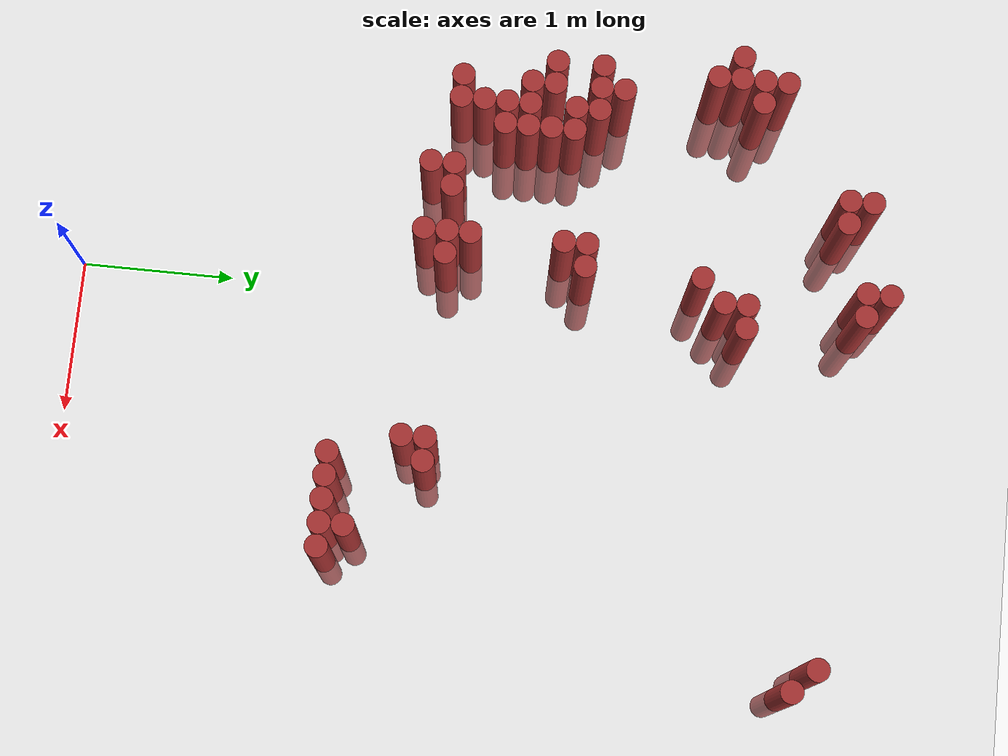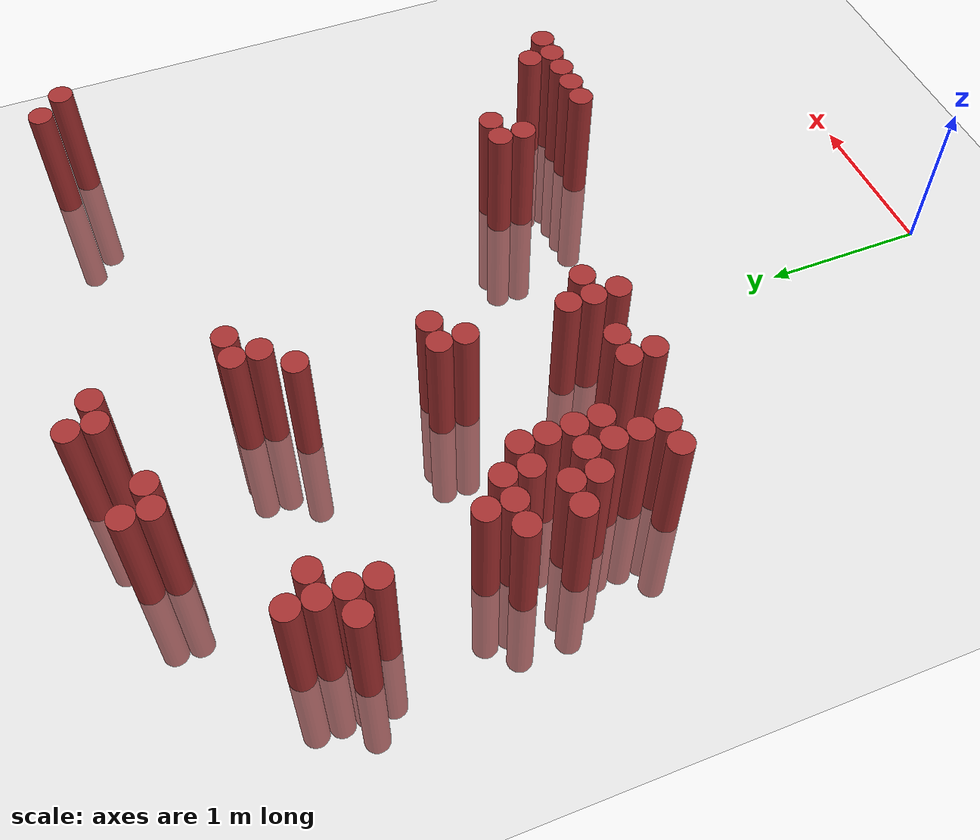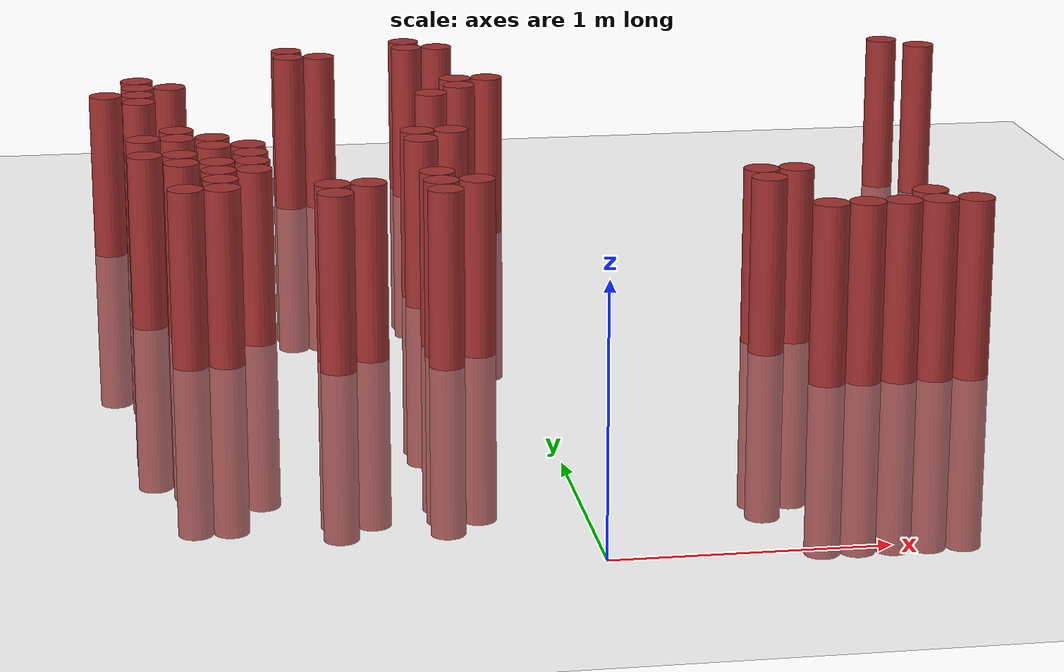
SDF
<sdf version="1.6">
 <world name="default">
  <model name="ground_plane">
   <static>1</static>
   <link name="link">
    <collision name="collision">
     <geometry><plane><normal>0 0 1</normal><size>100 100</size></plane></geometry>
     <surface><friction><ode><mu>100</mu><mu2>50</mu2></ode></friction></surface>
    </collision>
    <visual name="visual">
     <cast_shadows>0</cast_shadows>
     <geometry><plane><normal>0 0 1</normal><size>100 100</size></plane></geometry>
     <material>
      <script><uri>file://media/materials/scripts/gazebo.material</uri><name>Gazebo/Grey</name></script>
     </material>
    </visual>
   </link>
  </model>
  <model name="unit_cylinder_343">
   <static>1</static>
   <pose>-1.625000 4.225000 0.000000 0.000000 0.000000 0.000000</pose>
   <link name="link">
    <inertial>
     <mass>1</mass>
     <inertia><ixx>0.145833</ixx><ixy>0</ixy><ixz>0</ixz><iyy>0.145833</iyy><iyz>0</iyz><izz>0.125</izz></inertia>
    </inertial>
    <collision name="collision">
     <geometry><cylinder><radius>0.075000</radius><length>1.5</length></cylinder></geometry>
    </collision>
    <visual name="visual">
     <geometry><cylinder><radius>0.075000</radius><length>1.5</length></cylinder></geometry>
     <material>
      <ambient>0.648000 0.192000 0.192000 1</ambient>
      <diffuse>0.648000 0.192000 0.192000 1</diffuse>
     </material>
     <material>
      <script><name>Gazebo/Grey</name><uri>file://media/materials/scripts/gazebo.material</uri></script>
     </material>
    </visual>
   </link>
  </model>
  <model name="unit_cylinder_344">
   <static>1</static>
   <pose>-1.475000 3.025000 0.000000 0.000000 0.000000 0.000000</pose>
   <link name="link">
    <inertial>
     <mass>1</mass>
     <inertia><ixx>0.145833</ixx><ixy>0</ixy><ixz>0</ixz><iyy>0.145833</iyy><iyz>0</iyz><izz>0.125</izz></inertia>
    </inertial>
    <collision name="collision">
     <geometry><cylinder><radius>0.075000</radius><length>1.5</length></cylinder></geometry>
    </collision>
    <visual name="visual">
     <geometry><cylinder><radius>0.075000</radius><length>1.5</length></cylinder></geometry>
     <material>
      <ambient>0.648000 0.192000 0.192000 1</ambient>
      <diffuse>0.648000 0.192000 0.192000 1</diffuse>
     </material>
     <material>
      <script><name>Gazebo/Grey</name><uri>file://media/materials/scripts/gazebo.material</uri></script>
     </material>
    </visual>
   </link>
  </model>
  <model name="unit_cylinder_345">
   <static>1</static>
   <pose>-1.475000 3.325000 0.000000 0.000000 0.000000 0.000000</pose>
   <link name="link">
    <inertial>
     <mass>1</mass>
     <inertia><ixx>0.145833</ixx><ixy>0</ixy><ixz>0</ixz><iyy>0.145833</iyy><iyz>0</iyz><izz>0.125</izz></inertia>
    </inertial>
    <collision name="collision">
     <geometry><cylinder><radius>0.075000</radius><length>1.5</length></cylinder></geometry>
    </collision>
    <visual name="visual">
     <geometry><cylinder><radius>0.075000</radius><length>1.5</length></cylinder></geometry>
     <material>
      <ambient>0.648000 0.192000 0.192000 1</ambient>
      <diffuse>0.648000 0.192000 0.192000 1</diffuse>
     </material>
     <material>
      <script><name>Gazebo/Grey</name><uri>file://media/materials/scripts/gazebo.material</uri></script>
     </material>
    </visual>
   </link>
  </model>
  <model name="unit_cylinder_346">
   <static>1</static>
   <pose>-1.475000 4.075000 0.000000 0.000000 0.000000 0.000000</pose>
   <link name="link">
    <inertial>
     <mass>1</mass>
     <inertia><ixx>0.145833</ixx><ixy>0</ixy><ixz>0</ixz><iyy>0.145833</iyy><iyz>0</iyz><izz>0.125</izz></inertia>
    </inertial>
    <collision name="collision">
     <geometry><cylinder><radius>0.075000</radius><length>1.5</length></cylinder></geometry>
    </collision>
    <visual name="visual">
     <geometry><cylinder><radius>0.075000</radius><length>1.5</length></cylinder></geometry>
     <material>
      <ambient>0.648000 0.192000 0.192000 1</ambient>
      <diffuse>0.648000 0.192000 0.192000 1</diffuse>
     </material>
     <material>
      <script><name>Gazebo/Grey</name><uri>file://media/materials/scripts/gazebo.material</uri></script>
     </material>
    </visual>
   </link>
  </model>
  <model name="unit_cylinder_347">
   <static>1</static>
   <pose>-1.475000 4.225000 0.000000 0.000000 0.000000 0.000000</pose>
   <link name="link">
    <inertial>
     <mass>1</mass>
     <inertia><ixx>0.145833</ixx><ixy>0</ixy><ixz>0</ixz><iyy>0.145833</iyy><iyz>0</iyz><izz>0.125</izz></inertia>
    </inertial>
    <collision name="collision">
     <geometry><cylinder><radius>0.075000</radius><length>1.5</length></cylinder></geometry>
    </collision>
    <visual name="visual">
     <geometry><cylinder><radius>0.075000</radius><length>1.5</length></cylinder></geometry>
     <material>
      <ambient>0.648000 0.192000 0.192000 1</ambient>
      <diffuse>0.648000 0.192000 0.192000 1</diffuse>
     </material>
     <material>
      <script><name>Gazebo/Grey</name><uri>file://media/materials/scripts/gazebo.material</uri></script>
     </material>
    </visual>
   </link>
  </model>
  <model name="unit_cylinder_348">
   <static>1</static>
   <pose>-1.475000 4.375000 0.000000 0.000000 0.000000 0.000000</pose>
   <link name="link">
    <inertial>
     <mass>1</mass>
     <inertia><ixx>0.145833</ixx><ixy>0</ixy><ixz>0</ixz><iyy>0.145833</iyy><iyz>0</iyz><izz>0.125</izz></inertia>
    </inertial>
    <collision name="collision">
     <geometry><cylinder><radius>0.075000</radius><length>1.5</length></cylinder></geometry>
    </collision>
    <visual name="visual">
     <geometry><cylinder><radius>0.075000</radius><length>1.5</length></cylinder></geometry>
     <material>
      <ambient>0.648000 0.192000 0.192000 1</ambient>
      <diffuse>0.648000 0.192000 0.192000 1</diffuse>
     </material>
     <material>
      <script><name>Gazebo/Grey</name><uri>file://media/materials/scripts/gazebo.material</uri></script>
     </material>
    </visual>
   </link>
  </model>
  <model name="unit_cylinder_349">
   <static>1</static>
   <pose>-1.475000 4.525000 0.000000 0.000000 0.000000 0.000000</pose>
   <link name="link">
    <inertial>
     <mass>1</mass>
     <inertia><ixx>0.145833</ixx><ixy>0</ixy><ixz>0</ixz><iyy>0.145833</iyy><iyz>0</iyz><izz>0.125</izz></inertia>
    </inertial>
    <collision name="collision">
     <geometry><cylinder><radius>0.075000</radius><length>1.5</length></cylinder></geometry>
    </collision>
    <visual name="visual">
     <geometry><cylinder><radius>0.075000</radius><length>1.5</length></cylinder></geometry>
     <material>
      <ambient>0.648000 0.192000 0.192000 1</ambient>
      <diffuse>0.648000 0.192000 0.192000 1</diffuse>
     </material>
     <material>
      <script><name>Gazebo/Grey</name><uri>file://media/materials/scripts/gazebo.material</uri></script>
     </material>
    </visual>
   </link>
  </model>
  <model name="unit_cylinder_350">
   <static>1</static>
   <pose>-1.325000 2.425000 0.000000 0.000000 0.000000 0.000000</pose>
   <link name="link">
    <inertial>
     <mass>1</mass>
     <inertia><ixx>0.145833</ixx><ixy>0</ixy><ixz>0</ixz><iyy>0.145833</iyy><iyz>0</iyz><izz>0.125</izz></inertia>
    </inertial>
    <collision name="collision">
     <geometry><cylinder><radius>0.075000</radius><length>1.5</length></cylinder></geometry>
    </collision>
    <visual name="visual">
     <geometry><cylinder><radius>0.075000</radius><length>1.5</length></cylinder></geometry>
     <material>
      <ambient>0.648000 0.192000 0.192000 1</ambient>
      <diffuse>0.648000 0.192000 0.192000 1</diffuse>
     </material>
     <material>
      <script><name>Gazebo/Grey</name><uri>file://media/materials/scripts/gazebo.material</uri></script>
     </material>
    </visual>
   </link>
  </model>
  <model name="unit_cylinder_351">
   <static>1</static>
   <pose>-1.325000 2.875000 0.000000 0.000000 0.000000 0.000000</pose>
   <link name="link">
    <inertial>
     <mass>1</mass>
     <inertia><ixx>0.145833</ixx><ixy>0</ixy><ixz>0</ixz><iyy>0.145833</iyy><iyz>0</iyz><izz>0.125</izz></inertia>
    </inertial>
    <collision name="collision">
     <geometry><cylinder><radius>0.075000</radius><length>1.5</length></cylinder></geometry>
    </collision>
    <visual name="visual">
     <geometry><cylinder><radius>0.075000</radius><length>1.5</length></cylinder></geometry>
     <material>
      <ambient>0.648000 0.192000 0.192000 1</ambient>
      <diffuse>0.648000 0.192000 0.192000 1</diffuse>
     </material>
     <material>
      <script><name>Gazebo/Grey</name><uri>file://media/materials/scripts/gazebo.material</uri></script>
     </material>
    </visual>
   </link>
  </model>
  <model name="unit_cylinder_352">
   <static>1</static>
   <pose>-1.325000 3.025000 0.000000 0.000000 0.000000 0.000000</pose>
   <link name="link">
    <inertial>
     <mass>1</mass>
     <inertia><ixx>0.145833</ixx><ixy>0</ixy><ixz>0</ixz><iyy>0.145833</iyy><iyz>0</iyz><izz>0.125</izz></inertia>
    </inertial>
    <collision name="collision">
     <geometry><cylinder><radius>0.075000</radius><length>1.5</length></cylinder></geometry>
    </collision>
    <visual name="visual">
     <geometry><cylinder><radius>0.075000</radius><length>1.5</length></cylinder></geometry>
     <material>
      <ambient>0.648000 0.192000 0.192000 1</ambient>
      <diffuse>0.648000 0.192000 0.192000 1</diffuse>
     </material>
     <material>
      <script><name>Gazebo/Grey</name><uri>file://media/materials/scripts/gazebo.material</uri></script>
     </material>
    </visual>
   </link>
  </model>
  <model name="unit_cylinder_353">
   <static>1</static>
   <pose>-1.325000 3.325000 0.000000 0.000000 0.000000 0.000000</pose>
   <link name="link">
    <inertial>
     <mass>1</mass>
     <inertia><ixx>0.145833</ixx><ixy>0</ixy><ixz>0</ixz><iyy>0.145833</iyy><iyz>0</iyz><izz>0.125</izz></inertia>
    </inertial>
    <collision name="collision">
     <geometry><cylinder><radius>0.075000</radius><length>1.5</length></cylinder></geometry>
    </collision>
    <visual name="visual">
     <geometry><cylinder><radius>0.075000</radius><length>1.5</length></cylinder></geometry>
     <material>
      <ambient>0.648000 0.192000 0.192000 1</ambient>
      <diffuse>0.648000 0.192000 0.192000 1</diffuse>
     </material>
     <material>
      <script><name>Gazebo/Grey</name><uri>file://media/materials/scripts/gazebo.material</uri></script>
     </material>
    </visual>
   </link>
  </model>
  <model name="unit_cylinder_354">
   <static>1</static>
   <pose>-1.325000 3.475000 0.000000 0.000000 0.000000 0.000000</pose>
   <link name="link">
    <inertial>
     <mass>1</mass>
     <inertia><ixx>0.145833</ixx><ixy>0</ixy><ixz>0</ixz><iyy>0.145833</iyy><iyz>0</iyz><izz>0.125</izz></inertia>
    </inertial>
    <collision name="collision">
     <geometry><cylinder><radius>0.075000</radius><length>1.5</length></cylinder></geometry>
    </collision>
    <visual name="visual">
     <geometry><cylinder><radius>0.075000</radius><length>1.5</length></cylinder></geometry>
     <material>
      <ambient>0.648000 0.192000 0.192000 1</ambient>
      <diffuse>0.648000 0.192000 0.192000 1</diffuse>
     </material>
     <material>
      <script><name>Gazebo/Grey</name><uri>file://media/materials/scripts/gazebo.material</uri></script>
     </material>
    </visual>
   </link>
  </model>
  <model name="unit_cylinder_355">
   <static>1</static>
   <pose>-1.325000 4.375000 0.000000 0.000000 0.000000 0.000000</pose>
   <link name="link">
    <inertial>
     <mass>1</mass>
     <inertia><ixx>0.145833</ixx><ixy>0</ixy><ixz>0</ixz><iyy>0.145833</iyy><iyz>0</iyz><izz>0.125</izz></inertia>
    </inertial>
    <collision name="collision">
     <geometry><cylinder><radius>0.075000</radius><length>1.5</length></cylinder></geometry>
    </collision>
    <visual name="visual">
     <geometry><cylinder><radius>0.075000</radius><length>1.5</length></cylinder></geometry>
     <material>
      <ambient>0.648000 0.192000 0.192000 1</ambient>
      <diffuse>0.648000 0.192000 0.192000 1</diffuse>
     </material>
     <material>
      <script><name>Gazebo/Grey</name><uri>file://media/materials/scripts/gazebo.material</uri></script>
     </material>
    </visual>
   </link>
  </model>
  <model name="unit_cylinder_358">
   <static>1</static>
   <pose>-1.175000 2.425000 0.000000 0.000000 0.000000 0.000000</pose>
   <link name="link">
    <inertial>
     <mass>1</mass>
     <inertia><ixx>0.145833</ixx><ixy>0</ixy><ixz>0</ixz><iyy>0.145833</iyy><iyz>0</iyz><izz>0.125</izz></inertia>
    </inertial>
    <collision name="collision">
     <geometry><cylinder><radius>0.075000</radius><length>1.5</length></cylinder></geometry>
    </collision>
    <visual name="visual">
     <geometry><cylinder><radius>0.075000</radius><length>1.5</length></cylinder></geometry>
     <material>
      <ambient>0.648000 0.192000 0.192000 1</ambient>
      <diffuse>0.648000 0.192000 0.192000 1</diffuse>
     </material>
     <material>
      <script><name>Gazebo/Grey</name><uri>file://media/materials/scripts/gazebo.material</uri></script>
     </material>
    </visual>
   </link>
  </model>
  <model name="unit_cylinder_359">
   <static>1</static>
   <pose>-1.175000 2.575000 0.000000 0.000000 0.000000 0.000000</pose>
   <link name="link">
    <inertial>
     <mass>1</mass>
     <inertia><ixx>0.145833</ixx><ixy>0</ixy><ixz>0</ixz><iyy>0.145833</iyy><iyz>0</iyz><izz>0.125</izz></inertia>
    </inertial>
    <collision name="collision">
     <geometry><cylinder><radius>0.075000</radius><length>1.5</length></cylinder></geometry>
    </collision>
    <visual name="visual">
     <geometry><cylinder><radius>0.075000</radius><length>1.5</length></cylinder></geometry>
     <material>
      <ambient>0.648000 0.192000 0.192000 1</ambient>
      <diffuse>0.648000 0.192000 0.192000 1</diffuse>
     </material>
     <material>
      <script><name>Gazebo/Grey</name><uri>file://media/materials/scripts/gazebo.material</uri></script>
     </material>
    </visual>
   </link>
  </model>
  <model name="unit_cylinder_360">
   <static>1</static>
   <pose>-1.175000 2.725000 0.000000 0.000000 0.000000 0.000000</pose>
   <link name="link">
    <inertial>
     <mass>1</mass>
     <inertia><ixx>0.145833</ixx><ixy>0</ixy><ixz>0</ixz><iyy>0.145833</iyy><iyz>0</iyz><izz>0.125</izz></inertia>
    </inertial>
    <collision name="collision">
     <geometry><cylinder><radius>0.075000</radius><length>1.5</length></cylinder></geometry>
    </collision>
    <visual name="visual">
     <geometry><cylinder><radius>0.075000</radius><length>1.5</length></cylinder></geometry>
     <material>
      <ambient>0.648000 0.192000 0.192000 1</ambient>
      <diffuse>0.648000 0.192000 0.192000 1</diffuse>
     </material>
     <material>
      <script><name>Gazebo/Grey</name><uri>file://media/materials/scripts/gazebo.material</uri></script>
     </material>
    </visual>
   </link>
  </model>
  <model name="unit_cylinder_361">
   <static>1</static>
   <pose>-1.175000 2.875000 0.000000 0.000000 0.000000 0.000000</pose>
   <link name="link">
    <inertial>
     <mass>1</mass>
     <inertia><ixx>0.145833</ixx><ixy>0</ixy><ixz>0</ixz><iyy>0.145833</iyy><iyz>0</iyz><izz>0.125</izz></inertia>
    </inertial>
    <collision name="collision">
     <geometry><cylinder><radius>0.075000</radius><length>1.5</length></cylinder></geometry>
    </collision>
    <visual name="visual">
     <geometry><cylinder><radius>0.075000</radius><length>1.5</length></cylinder></geometry>
     <material>
      <ambient>0.648000 0.192000 0.192000 1</ambient>
      <diffuse>0.648000 0.192000 0.192000 1</diffuse>
     </material>
     <material>
      <script><name>Gazebo/Grey</name><uri>file://media/materials/scripts/gazebo.material</uri></script>
     </material>
    </visual>
   </link>
  </model>
  <model name="unit_cylinder_362">
   <static>1</static>
   <pose>-1.175000 3.175000 0.000000 0.000000 0.000000 0.000000</pose>
   <link name="link">
    <inertial>
     <mass>1</mass>
     <inertia><ixx>0.145833</ixx><ixy>0</ixy><ixz>0</ixz><iyy>0.145833</iyy><iyz>0</iyz><izz>0.125</izz></inertia>
    </inertial>
    <collision name="collision">
     <geometry><cylinder><radius>0.075000</radius><length>1.5</length></cylinder></geometry>
    </collision>
    <visual name="visual">
     <geometry><cylinder><radius>0.075000</radius><length>1.5</length></cylinder></geometry>
     <material>
      <ambient>0.648000 0.192000 0.192000 1</ambient>
      <diffuse>0.648000 0.192000 0.192000 1</diffuse>
     </material>
     <material>
      <script><name>Gazebo/Grey</name><uri>file://media/materials/scripts/gazebo.material</uri></script>
     </material>
    </visual>
   </link>
  </model>
  <model name="unit_cylinder_363">
   <static>1</static>
   <pose>-1.175000 3.325000 0.000000 0.000000 0.000000 0.000000</pose>
   <link name="link">
    <inertial>
     <mass>1</mass>
     <inertia><ixx>0.145833</ixx><ixy>0</ixy><ixz>0</ixz><iyy>0.145833</iyy><iyz>0</iyz><izz>0.125</izz></inertia>
    </inertial>
    <collision name="collision">
     <geometry><cylinder><radius>0.075000</radius><length>1.5</length></cylinder></geometry>
    </collision>
    <visual name="visual">
     <geometry><cylinder><radius>0.075000</radius><length>1.5</length></cylinder></geometry>
     <material>
      <ambient>0.648000 0.192000 0.192000 1</ambient>
      <diffuse>0.648000 0.192000 0.192000 1</diffuse>
     </material>
     <material>
      <script><name>Gazebo/Grey</name><uri>file://media/materials/scripts/gazebo.material</uri></script>
     </material>
    </visual>
   </link>
  </model>
  <model name="unit_cylinder_365">
   <static>1</static>
   <pose>-1.025000 2.725000 0.000000 0.000000 0.000000 0.000000</pose>
   <link name="link">
    <inertial>
     <mass>1</mass>
     <inertia><ixx>0.145833</ixx><ixy>0</ixy><ixz>0</ixz><iyy>0.145833</iyy><iyz>0</iyz><izz>0.125</izz></inertia>
    </inertial>
    <collision name="collision">
     <geometry><cylinder><radius>0.075000</radius><length>1.5</length></cylinder></geometry>
    </collision>
    <visual name="visual">
     <geometry><cylinder><radius>0.075000</radius><length>1.5</length></cylinder></geometry>
     <material>
      <ambient>0.648000 0.192000 0.192000 1</ambient>
      <diffuse>0.648000 0.192000 0.192000 1</diffuse>
     </material>
     <material>
      <script><name>Gazebo/Grey</name><uri>file://media/materials/scripts/gazebo.material</uri></script>
     </material>
    </visual>
   </link>
  </model>
  <model name="unit_cylinder_366">
   <static>1</static>
   <pose>-1.025000 2.875000 0.000000 0.000000 0.000000 0.000000</pose>
   <link name="link">
    <inertial>
     <mass>1</mass>
     <inertia><ixx>0.145833</ixx><ixy>0</ixy><ixz>0</ixz><iyy>0.145833</iyy><iyz>0</iyz><izz>0.125</izz></inertia>
    </inertial>
    <collision name="collision">
     <geometry><cylinder><radius>0.075000</radius><length>1.5</length></cylinder></geometry>
    </collision>
    <visual name="visual">
     <geometry><cylinder><radius>0.075000</radius><length>1.5</length></cylinder></geometry>
     <material>
      <ambient>0.648000 0.192000 0.192000 1</ambient>
      <diffuse>0.648000 0.192000 0.192000 1</diffuse>
     </material>
     <material>
      <script><name>Gazebo/Grey</name><uri>file://media/materials/scripts/gazebo.material</uri></script>
     </material>
    </visual>
   </link>
  </model>
  <model name="unit_cylinder_367">
   <static>1</static>
   <pose>-1.025000 3.025000 0.000000 0.000000 0.000000 0.000000</pose>
   <link name="link">
    <inertial>
     <mass>1</mass>
     <inertia><ixx>0.145833</ixx><ixy>0</ixy><ixz>0</ixz><iyy>0.145833</iyy><iyz>0</iyz><izz>0.125</izz></inertia>
    </inertial>
    <collision name="collision">
     <geometry><cylinder><radius>0.075000</radius><length>1.5</length></cylinder></geometry>
    </collision>
    <visual name="visual">
     <geometry><cylinder><radius>0.075000</radius><length>1.5</length></cylinder></geometry>
     <material>
      <ambient>0.648000 0.192000 0.192000 1</ambient>
      <diffuse>0.648000 0.192000 0.192000 1</diffuse>
     </material>
     <material>
      <script><name>Gazebo/Grey</name><uri>file://media/materials/scripts/gazebo.material</uri></script>
     </material>
    </visual>
   </link>
  </model>
  <model name="unit_cylinder_368">
   <static>1</static>
   <pose>-1.025000 3.175000 0.000000 0.000000 0.000000 0.000000</pose>
   <link name="link">
    <inertial>
     <mass>1</mass>
     <inertia><ixx>0.145833</ixx><ixy>0</ixy><ixz>0</ixz><iyy>0.145833</iyy><iyz>0</iyz><izz>0.125</izz></inertia>
    </inertial>
    <collision name="collision">
     <geometry><cylinder><radius>0.075000</radius><length>1.5</length></cylinder></geometry>
    </collision>
    <visual name="visual">
     <geometry><cylinder><radius>0.075000</radius><length>1.5</length></cylinder></geometry>
     <material>
      <ambient>0.648000 0.192000 0.192000 1</ambient>
      <diffuse>0.648000 0.192000 0.192000 1</diffuse>
     </material>
     <material>
      <script><name>Gazebo/Grey</name><uri>file://media/materials/scripts/gazebo.material</uri></script>
     </material>
    </visual>
   </link>
  </model>
  <model name="unit_cylinder_369">
   <static>1</static>
   <pose>-0.725000 2.275000 0.000000 0.000000 0.000000 0.000000</pose>
   <link name="link">
    <inertial>
     <mass>1</mass>
     <inertia><ixx>0.145833</ixx><ixy>0</ixy><ixz>0</ixz><iyy>0.145833</iyy><iyz>0</iyz><izz>0.125</izz></inertia>
    </inertial>
    <collision name="collision">
     <geometry><cylinder><radius>0.075000</radius><length>1.5</length></cylinder></geometry>
    </collision>
    <visual name="visual">
     <geometry><cylinder><radius>0.075000</radius><length>1.5</length></cylinder></geometry>
     <material>
      <ambient>0.648000 0.192000 0.192000 1</ambient>
      <diffuse>0.648000 0.192000 0.192000 1</diffuse>
     </material>
     <material>
      <script><name>Gazebo/Grey</name><uri>file://media/materials/scripts/gazebo.material</uri></script>
     </material>
    </visual>
   </link>
  </model>
  <model name="unit_cylinder_370">
   <static>1</static>
   <pose>-0.725000 2.425000 0.000000 0.000000 0.000000 0.000000</pose>
   <link name="link">
    <inertial>
     <mass>1</mass>
     <inertia><ixx>0.145833</ixx><ixy>0</ixy><ixz>0</ixz><iyy>0.145833</iyy><iyz>0</iyz><izz>0.125</izz></inertia>
    </inertial>
    <collision name="collision">
     <geometry><cylinder><radius>0.075000</radius><length>1.5</length></cylinder></geometry>
    </collision>
    <visual name="visual">
     <geometry><cylinder><radius>0.075000</radius><length>1.5</length></cylinder></geometry>
     <material>
      <ambient>0.648000 0.192000 0.192000 1</ambient>
      <diffuse>0.648000 0.192000 0.192000 1</diffuse>
     </material>
     <material>
      <script><name>Gazebo/Grey</name><uri>file://media/materials/scripts/gazebo.material</uri></script>
     </material>
    </visual>
   </link>
  </model>
  <model name="unit_cylinder_371">
   <static>1</static>
   <pose>-0.725000 4.975000 0.000000 0.000000 0.000000 0.000000</pose>
   <link name="link">
    <inertial>
     <mass>1</mass>
     <inertia><ixx>0.145833</ixx><ixy>0</ixy><ixz>0</ixz><iyy>0.145833</iyy><iyz>0</iyz><izz>0.125</izz></inertia>
    </inertial>
    <collision name="collision">
     <geometry><cylinder><radius>0.075000</radius><length>1.5</length></cylinder></geometry>
    </collision>
    <visual name="visual">
     <geometry><cylinder><radius>0.075000</radius><length>1.5</length></cylinder></geometry>
     <material>
      <ambient>0.648000 0.192000 0.192000 1</ambient>
      <diffuse>0.648000 0.192000 0.192000 1</diffuse>
     </material>
     <material>
      <script><name>Gazebo/Grey</name><uri>file://media/materials/scripts/gazebo.material</uri></script>
     </material>
    </visual>
   </link>
  </model>
  <model name="unit_cylinder_372">
   <static>1</static>
   <pose>-0.725000 5.125000 0.000000 0.000000 0.000000 0.000000</pose>
   <link name="link">
    <inertial>
     <mass>1</mass>
     <inertia><ixx>0.145833</ixx><ixy>0</ixy><ixz>0</ixz><iyy>0.145833</iyy><iyz>0</iyz><izz>0.125</izz></inertia>
    </inertial>
    <collision name="collision">
     <geometry><cylinder><radius>0.075000</radius><length>1.5</length></cylinder></geometry>
    </collision>
    <visual name="visual">
     <geometry><cylinder><radius>0.075000</radius><length>1.5</length></cylinder></geometry>
     <material>
      <ambient>0.648000 0.192000 0.192000 1</ambient>
      <diffuse>0.648000 0.192000 0.192000 1</diffuse>
     </material>
     <material>
      <script><name>Gazebo/Grey</name><uri>file://media/materials/scripts/gazebo.material</uri></script>
     </material>
    </visual>
   </link>
  </model>
  <model name="unit_cylinder_373">
   <static>1</static>
   <pose>-0.575000 2.425000 0.000000 0.000000 0.000000 0.000000</pose>
   <link name="link">
    <inertial>
     <mass>1</mass>
     <inertia><ixx>0.145833</ixx><ixy>0</ixy><ixz>0</ixz><iyy>0.145833</iyy><iyz>0</iyz><izz>0.125</izz></inertia>
    </inertial>
    <collision name="collision">
     <geometry><cylinder><radius>0.075000</radius><length>1.5</length></cylinder></geometry>
    </collision>
    <visual name="visual">
     <geometry><cylinder><radius>0.075000</radius><length>1.5</length></cylinder></geometry>
     <material>
      <ambient>0.648000 0.192000 0.192000 1</ambient>
      <diffuse>0.648000 0.192000 0.192000 1</diffuse>
     </material>
     <material>
      <script><name>Gazebo/Grey</name><uri>file://media/materials/scripts/gazebo.material</uri></script>
     </material>
    </visual>
   </link>
  </model>
  <model name="unit_cylinder_374">
   <static>1</static>
   <pose>-0.575000 4.975000 0.000000 0.000000 0.000000 0.000000</pose>
   <link name="link">
    <inertial>
     <mass>1</mass>
     <inertia><ixx>0.145833</ixx><ixy>0</ixy><ixz>0</ixz><iyy>0.145833</iyy><iyz>0</iyz><izz>0.125</izz></inertia>
    </inertial>
    <collision name="collision">
     <geometry><cylinder><radius>0.075000</radius><length>1.5</length></cylinder></geometry>
    </collision>
    <visual name="visual">
     <geometry><cylinder><radius>0.075000</radius><length>1.5</length></cylinder></geometry>
     <material>
      <ambient>0.648000 0.192000 0.192000 1</ambient>
      <diffuse>0.648000 0.192000 0.192000 1</diffuse>
     </material>
     <material>
      <script><name>Gazebo/Grey</name><uri>file://media/materials/scripts/gazebo.material</uri></script>
     </material>
    </visual>
   </link>
  </model>
  <model name="unit_cylinder_375">
   <static>1</static>
   <pose>-0.275000 2.275000 0.000000 0.000000 0.000000 0.000000</pose>
   <link name="link">
    <inertial>
     <mass>1</mass>
     <inertia><ixx>0.145833</ixx><ixy>0</ixy><ixz>0</ixz><iyy>0.145833</iyy><iyz>0</iyz><izz>0.125</izz></inertia>
    </inertial>
    <collision name="collision">
     <geometry><cylinder><radius>0.075000</radius><length>1.5</length></cylinder></geometry>
    </collision>
    <visual name="visual">
     <geometry><cylinder><radius>0.075000</radius><length>1.5</length></cylinder></geometry>
     <material>
      <ambient>0.648000 0.192000 0.192000 1</ambient>
      <diffuse>0.648000 0.192000 0.192000 1</diffuse>
     </material>
     <material>
      <script><name>Gazebo/Grey</name><uri>file://media/materials/scripts/gazebo.material</uri></script>
     </material>
    </visual>
   </link>
  </model>
  <model name="unit_cylinder_376">
   <static>1</static>
   <pose>-0.275000 2.425000 0.000000 0.000000 0.000000 0.000000</pose>
   <link name="link">
    <inertial>
     <mass>1</mass>
     <inertia><ixx>0.145833</ixx><ixy>0</ixy><ixz>0</ixz><iyy>0.145833</iyy><iyz>0</iyz><izz>0.125</izz></inertia>
    </inertial>
    <collision name="collision">
     <geometry><cylinder><radius>0.075000</radius><length>1.5</length></cylinder></geometry>
    </collision>
    <visual name="visual">
     <geometry><cylinder><radius>0.075000</radius><length>1.5</length></cylinder></geometry>
     <material>
      <ambient>0.648000 0.192000 0.192000 1</ambient>
      <diffuse>0.648000 0.192000 0.192000 1</diffuse>
     </material>
     <material>
      <script><name>Gazebo/Grey</name><uri>file://media/materials/scripts/gazebo.material</uri></script>
     </material>
    </visual>
   </link>
  </model>
  <model name="unit_cylinder_377">
   <static>1</static>
   <pose>-0.275000 2.575000 0.000000 0.000000 0.000000 0.000000</pose>
   <link name="link">
    <inertial>
     <mass>1</mass>
     <inertia><ixx>0.145833</ixx><ixy>0</ixy><ixz>0</ixz><iyy>0.145833</iyy><iyz>0</iyz><izz>0.125</izz></inertia>
    </inertial>
    <collision name="collision">
     <geometry><cylinder><radius>0.075000</radius><length>1.5</length></cylinder></geometry>
    </collision>
    <visual name="visual">
     <geometry><cylinder><radius>0.075000</radius><length>1.5</length></cylinder></geometry>
     <material>
      <ambient>0.648000 0.192000 0.192000 1</ambient>
      <diffuse>0.648000 0.192000 0.192000 1</diffuse>
     </material>
     <material>
      <script><name>Gazebo/Grey</name><uri>file://media/materials/scripts/gazebo.material</uri></script>
     </material>
    </visual>
   </link>
  </model>
  <model name="unit_cylinder_378">
   <static>1</static>
   <pose>-0.275000 3.175000 0.000000 0.000000 0.000000 0.000000</pose>
   <link name="link">
    <inertial>
     <mass>1</mass>
     <inertia><ixx>0.145833</ixx><ixy>0</ixy><ixz>0</ixz><iyy>0.145833</iyy><iyz>0</iyz><izz>0.125</izz></inertia>
    </inertial>
    <collision name="collision">
     <geometry><cylinder><radius>0.075000</radius><length>1.5</length></cylinder></geometry>
    </collision>
    <visual name="visual">
     <geometry><cylinder><radius>0.075000</radius><length>1.5</length></cylinder></geometry>
     <material>
      <ambient>0.648000 0.192000 0.192000 1</ambient>
      <diffuse>0.648000 0.192000 0.192000 1</diffuse>
     </material>
     <material>
      <script><name>Gazebo/Grey</name><uri>file://media/materials/scripts/gazebo.material</uri></script>
     </material>
    </visual>
   </link>
  </model>
  <model name="unit_cylinder_379">
   <static>1</static>
   <pose>-0.275000 3.325000 0.000000 0.000000 0.000000 0.000000</pose>
   <link name="link">
    <inertial>
     <mass>1</mass>
     <inertia><ixx>0.145833</ixx><ixy>0</ixy><ixz>0</ixz><iyy>0.145833</iyy><iyz>0</iyz><izz>0.125</izz></inertia>
    </inertial>
    <collision name="collision">
     <geometry><cylinder><radius>0.075000</radius><length>1.5</length></cylinder></geometry>
    </collision>
    <visual name="visual">
     <geometry><cylinder><radius>0.075000</radius><length>1.5</length></cylinder></geometry>
     <material>
      <ambient>0.648000 0.192000 0.192000 1</ambient>
      <diffuse>0.648000 0.192000 0.192000 1</diffuse>
     </material>
     <material>
      <script><name>Gazebo/Grey</name><uri>file://media/materials/scripts/gazebo.material</uri></script>
     </material>
    </visual>
   </link>
  </model>
  <model name="unit_cylinder_380">
   <static>1</static>
   <pose>-0.125000 2.425000 0.000000 0.000000 0.000000 0.000000</pose>
   <link name="link">
    <inertial>
     <mass>1</mass>
     <inertia><ixx>0.145833</ixx><ixy>0</ixy><ixz>0</ixz><iyy>0.145833</iyy><iyz>0</iyz><izz>0.125</izz></inertia>
    </inertial>
    <collision name="collision">
     <geometry><cylinder><radius>0.075000</radius><length>1.5</length></cylinder></geometry>
    </collision>
    <visual name="visual">
     <geometry><cylinder><radius>0.075000</radius><length>1.5</length></cylinder></geometry>
     <material>
      <ambient>0.648000 0.192000 0.192000 1</ambient>
      <diffuse>0.648000 0.192000 0.192000 1</diffuse>
     </material>
     <material>
      <script><name>Gazebo/Grey</name><uri>file://media/materials/scripts/gazebo.material</uri></script>
     </material>
    </visual>
   </link>
  </model>
  <model name="unit_cylinder_381">
   <static>1</static>
   <pose>-0.125000 3.325000 0.000000 0.000000 0.000000 0.000000</pose>
   <link name="link">
    <inertial>
     <mass>1</mass>
     <inertia><ixx>0.145833</ixx><ixy>0</ixy><ixz>0</ixz><iyy>0.145833</iyy><iyz>0</iyz><izz>0.125</izz></inertia>
    </inertial>
    <collision name="collision">
     <geometry><cylinder><radius>0.075000</radius><length>1.5</length></cylinder></geometry>
    </collision>
    <visual name="visual">
     <geometry><cylinder><radius>0.075000</radius><length>1.5</length></cylinder></geometry>
     <material>
      <ambient>0.648000 0.192000 0.192000 1</ambient>
      <diffuse>0.648000 0.192000 0.192000 1</diffuse>
     </material>
     <material>
      <script><name>Gazebo/Grey</name><uri>file://media/materials/scripts/gazebo.material</uri></script>
     </material>
    </visual>
   </link>
  </model>
  <model name="unit_cylinder_382">
   <static>1</static>
   <pose>-0.125000 4.075000 0.000000 0.000000 0.000000 0.000000</pose>
   <link name="link">
    <inertial>
     <mass>1</mass>
     <inertia><ixx>0.145833</ixx><ixy>0</ixy><ixz>0</ixz><iyy>0.145833</iyy><iyz>0</iyz><izz>0.125</izz></inertia>
    </inertial>
    <collision name="collision">
     <geometry><cylinder><radius>0.075000</radius><length>1.5</length></cylinder></geometry>
    </collision>
    <visual name="visual">
     <geometry><cylinder><radius>0.075000</radius><length>1.5</length></cylinder></geometry>
     <material>
      <ambient>0.648000 0.192000 0.192000 1</ambient>
      <diffuse>0.648000 0.192000 0.192000 1</diffuse>
     </material>
     <material>
      <script><name>Gazebo/Grey</name><uri>file://media/materials/scripts/gazebo.material</uri></script>
     </material>
    </visual>
   </link>
  </model>
  <model name="unit_cylinder_383">
   <static>1</static>
   <pose>-0.125000 5.125000 0.000000 0.000000 0.000000 0.000000</pose>
   <link name="link">
    <inertial>
     <mass>1</mass>
     <inertia><ixx>0.145833</ixx><ixy>0</ixy><ixz>0</ixz><iyy>0.145833</iyy><iyz>0</iyz><izz>0.125</izz></inertia>
    </inertial>
    <collision name="collision">
     <geometry><cylinder><radius>0.075000</radius><length>1.5</length></cylinder></geometry>
    </collision>
    <visual name="visual">
     <geometry><cylinder><radius>0.075000</radius><length>1.5</length></cylinder></geometry>
     <material>
      <ambient>0.648000 0.192000 0.192000 1</ambient>
      <diffuse>0.648000 0.192000 0.192000 1</diffuse>
     </material>
     <material>
      <script><name>Gazebo/Grey</name><uri>file://media/materials/scripts/gazebo.material</uri></script>
     </material>
    </visual>
   </link>
  </model>
  <model name="unit_cylinder_384">
   <static>1</static>
   <pose>-0.125000 5.275000 0.000000 0.000000 0.000000 0.000000</pose>
   <link name="link">
    <inertial>
     <mass>1</mass>
     <inertia><ixx>0.145833</ixx><ixy>0</ixy><ixz>0</ixz><iyy>0.145833</iyy><iyz>0</iyz><izz>0.125</izz></inertia>
    </inertial>
    <collision name="collision">
     <geometry><cylinder><radius>0.075000</radius><length>1.5</length></cylinder></geometry>
    </collision>
    <visual name="visual">
     <geometry><cylinder><radius>0.075000</radius><length>1.5</length></cylinder></geometry>
     <material>
      <ambient>0.648000 0.192000 0.192000 1</ambient>
      <diffuse>0.648000 0.192000 0.192000 1</diffuse>
     </material>
     <material>
      <script><name>Gazebo/Grey</name><uri>file://media/materials/scripts/gazebo.material</uri></script>
     </material>
    </visual>
   </link>
  </model>
  <model name="unit_cylinder_385">
   <static>1</static>
   <pose>0.025000 4.225000 0.000000 0.000000 0.000000 0.000000</pose>
   <link name="link">
    <inertial>
     <mass>1</mass>
     <inertia><ixx>0.145833</ixx><ixy>0</ixy><ixz>0</ixz><iyy>0.145833</iyy><iyz>0</iyz><izz>0.125</izz></inertia>
    </inertial>
    <collision name="collision">
     <geometry><cylinder><radius>0.075000</radius><length>1.5</length></cylinder></geometry>
    </collision>
    <visual name="visual">
     <geometry><cylinder><radius>0.075000</radius><length>1.5</length></cylinder></geometry>
     <material>
      <ambient>0.648000 0.192000 0.192000 1</ambient>
      <diffuse>0.648000 0.192000 0.192000 1</diffuse>
     </material>
     <material>
      <script><name>Gazebo/Grey</name><uri>file://media/materials/scripts/gazebo.material</uri></script>
     </material>
    </visual>
   </link>
  </model>
  <model name="unit_cylinder_386">
   <static>1</static>
   <pose>0.025000 4.375000 0.000000 0.000000 0.000000 0.000000</pose>
   <link name="link">
    <inertial>
     <mass>1</mass>
     <inertia><ixx>0.145833</ixx><ixy>0</ixy><ixz>0</ixz><iyy>0.145833</iyy><iyz>0</iyz><izz>0.125</izz></inertia>
    </inertial>
    <collision name="collision">
     <geometry><cylinder><radius>0.075000</radius><length>1.5</length></cylinder></geometry>
    </collision>
    <visual name="visual">
     <geometry><cylinder><radius>0.075000</radius><length>1.5</length></cylinder></geometry>
     <material>
      <ambient>0.648000 0.192000 0.192000 1</ambient>
      <diffuse>0.648000 0.192000 0.192000 1</diffuse>
     </material>
     <material>
      <script><name>Gazebo/Grey</name><uri>file://media/materials/scripts/gazebo.material</uri></script>
     </material>
    </visual>
   </link>
  </model>
  <model name="unit_cylinder_387">
   <static>1</static>
   <pose>0.025000 5.125000 0.000000 0.000000 0.000000 0.000000</pose>
   <link name="link">
    <inertial>
     <mass>1</mass>
     <inertia><ixx>0.145833</ixx><ixy>0</ixy><ixz>0</ixz><iyy>0.145833</iyy><iyz>0</iyz><izz>0.125</izz></inertia>
    </inertial>
    <collision name="collision">
     <geometry><cylinder><radius>0.075000</radius><length>1.5</length></cylinder></geometry>
    </collision>
    <visual name="visual">
     <geometry><cylinder><radius>0.075000</radius><length>1.5</length></cylinder></geometry>
     <material>
      <ambient>0.648000 0.192000 0.192000 1</ambient>
      <diffuse>0.648000 0.192000 0.192000 1</diffuse>
     </material>
     <material>
      <script><name>Gazebo/Grey</name><uri>file://media/materials/scripts/gazebo.material</uri></script>
     </material>
    </visual>
   </link>
  </model>
  <model name="unit_cylinder_388">
   <static>1</static>
   <pose>0.175000 4.375000 0.000000 0.000000 0.000000 0.000000</pose>
   <link name="link">
    <inertial>
     <mass>1</mass>
     <inertia><ixx>0.145833</ixx><ixy>0</ixy><ixz>0</ixz><iyy>0.145833</iyy><iyz>0</iyz><izz>0.125</izz></inertia>
    </inertial>
    <collision name="collision">
     <geometry><cylinder><radius>0.075000</radius><length>1.5</length></cylinder></geometry>
    </collision>
    <visual name="visual">
     <geometry><cylinder><radius>0.075000</radius><length>1.5</length></cylinder></geometry>
     <material>
      <ambient>0.648000 0.192000 0.192000 1</ambient>
      <diffuse>0.648000 0.192000 0.192000 1</diffuse>
     </material>
     <material>
      <script><name>Gazebo/Grey</name><uri>file://media/materials/scripts/gazebo.material</uri></script>
     </material>
    </visual>
   </link>
  </model>
  <model name="unit_cylinder_394">
   <static>1</static>
   <pose>1.075000 2.275000 0.000000 0.000000 0.000000 0.000000</pose>
   <link name="link">
    <inertial>
     <mass>1</mass>
     <inertia><ixx>0.145833</ixx><ixy>0</ixy><ixz>0</ixz><iyy>0.145833</iyy><iyz>0</iyz><izz>0.125</izz></inertia>
    </inertial>
    <collision name="collision">
     <geometry><cylinder><radius>0.075000</radius><length>1.5</length></cylinder></geometry>
    </collision>
    <visual name="visual">
     <geometry><cylinder><radius>0.075000</radius><length>1.5</length></cylinder></geometry>
     <material>
      <ambient>0.648000 0.192000 0.192000 1</ambient>
      <diffuse>0.648000 0.192000 0.192000 1</diffuse>
     </material>
     <material>
      <script><name>Gazebo/Grey</name><uri>file://media/materials/scripts/gazebo.material</uri></script>
     </material>
    </visual>
   </link>
  </model>
  <model name="unit_cylinder_395">
   <static>1</static>
   <pose>1.075000 2.425000 0.000000 0.000000 0.000000 0.000000</pose>
   <link name="link">
    <inertial>
     <mass>1</mass>
     <inertia><ixx>0.145833</ixx><ixy>0</ixy><ixz>0</ixz><iyy>0.145833</iyy><iyz>0</iyz><izz>0.125</izz></inertia>
    </inertial>
    <collision name="collision">
     <geometry><cylinder><radius>0.075000</radius><length>1.5</length></cylinder></geometry>
    </collision>
    <visual name="visual">
     <geometry><cylinder><radius>0.075000</radius><length>1.5</length></cylinder></geometry>
     <material>
      <ambient>0.648000 0.192000 0.192000 1</ambient>
      <diffuse>0.648000 0.192000 0.192000 1</diffuse>
     </material>
     <material>
      <script><name>Gazebo/Grey</name><uri>file://media/materials/scripts/gazebo.material</uri></script>
     </material>
    </visual>
   </link>
  </model>
  <model name="unit_cylinder_399">
   <static>1</static>
   <pose>1.225000 1.825000 0.000000 0.000000 0.000000 0.000000</pose>
   <link name="link">
    <inertial>
     <mass>1</mass>
     <inertia><ixx>0.145833</ixx><ixy>0</ixy><ixz>0</ixz><iyy>0.145833</iyy><iyz>0</iyz><izz>0.125</izz></inertia>
    </inertial>
    <collision name="collision">
     <geometry><cylinder><radius>0.075000</radius><length>1.5</length></cylinder></geometry>
    </collision>
    <visual name="visual">
     <geometry><cylinder><radius>0.075000</radius><length>1.5</length></cylinder></geometry>
     <material>
      <ambient>0.648000 0.192000 0.192000 1</ambient>
      <diffuse>0.648000 0.192000 0.192000 1</diffuse>
     </material>
     <material>
      <script><name>Gazebo/Grey</name><uri>file://media/materials/scripts/gazebo.material</uri></script>
     </material>
    </visual>
   </link>
  </model>
  <model name="unit_cylinder_400">
   <static>1</static>
   <pose>1.225000 2.425000 0.000000 0.000000 0.000000 0.000000</pose>
   <link name="link">
    <inertial>
     <mass>1</mass>
     <inertia><ixx>0.145833</ixx><ixy>0</ixy><ixz>0</ixz><iyy>0.145833</iyy><iyz>0</iyz><izz>0.125</izz></inertia>
    </inertial>
    <collision name="collision">
     <geometry><cylinder><radius>0.075000</radius><length>1.5</length></cylinder></geometry>
    </collision>
    <visual name="visual">
     <geometry><cylinder><radius>0.075000</radius><length>1.5</length></cylinder></geometry>
     <material>
      <ambient>0.648000 0.192000 0.192000 1</ambient>
      <diffuse>0.648000 0.192000 0.192000 1</diffuse>
     </material>
     <material>
      <script><name>Gazebo/Grey</name><uri>file://media/materials/scripts/gazebo.material</uri></script>
     </material>
    </visual>
   </link>
  </model>
  <model name="unit_cylinder_404">
   <static>1</static>
   <pose>1.375000 1.825000 0.000000 0.000000 0.000000 0.000000</pose>
   <link name="link">
    <inertial>
     <mass>1</mass>
     <inertia><ixx>0.145833</ixx><ixy>0</ixy><ixz>0</ixz><iyy>0.145833</iyy><iyz>0</iyz><izz>0.125</izz></inertia>
    </inertial>
    <collision name="collision">
     <geometry><cylinder><radius>0.075000</radius><length>1.5</length></cylinder></geometry>
    </collision>
    <visual name="visual">
     <geometry><cylinder><radius>0.075000</radius><length>1.5</length></cylinder></geometry>
     <material>
      <ambient>0.648000 0.192000 0.192000 1</ambient>
      <diffuse>0.648000 0.192000 0.192000 1</diffuse>
     </material>
     <material>
      <script><name>Gazebo/Grey</name><uri>file://media/materials/scripts/gazebo.material</uri></script>
     </material>
    </visual>
   </link>
  </model>
  <model name="unit_cylinder_407">
   <static>1</static>
   <pose>1.525000 1.825000 0.000000 0.000000 0.000000 0.000000</pose>
   <link name="link">
    <inertial>
     <mass>1</mass>
     <inertia><ixx>0.145833</ixx><ixy>0</ixy><ixz>0</ixz><iyy>0.145833</iyy><iyz>0</iyz><izz>0.125</izz></inertia>
    </inertial>
    <collision name="collision">
     <geometry><cylinder><radius>0.075000</radius><length>1.5</length></cylinder></geometry>
    </collision>
    <visual name="visual">
     <geometry><cylinder><radius>0.075000</radius><length>1.5</length></cylinder></geometry>
     <material>
      <ambient>0.648000 0.192000 0.192000 1</ambient>
      <diffuse>0.648000 0.192000 0.192000 1</diffuse>
     </material>
     <material>
      <script><name>Gazebo/Grey</name><uri>file://media/materials/scripts/gazebo.material</uri></script>
     </material>
    </visual>
   </link>
  </model>
  <model name="unit_cylinder_411">
   <static>1</static>
   <pose>1.675000 1.825000 0.000000 0.000000 0.000000 0.000000</pose>
   <link name="link">
    <inertial>
     <mass>1</mass>
     <inertia><ixx>0.145833</ixx><ixy>0</ixy><ixz>0</ixz><iyy>0.145833</iyy><iyz>0</iyz><izz>0.125</izz></inertia>
    </inertial>
    <collision name="collision">
     <geometry><cylinder><radius>0.075000</radius><length>1.5</length></cylinder></geometry>
    </collision>
    <visual name="visual">
     <geometry><cylinder><radius>0.075000</radius><length>1.5</length></cylinder></geometry>
     <material>
      <ambient>0.648000 0.192000 0.192000 1</ambient>
      <diffuse>0.648000 0.192000 0.192000 1</diffuse>
     </material>
     <material>
      <script><name>Gazebo/Grey</name><uri>file://media/materials/scripts/gazebo.material</uri></script>
     </material>
    </visual>
   </link>
  </model>
  <model name="unit_cylinder_412">
   <static>1</static>
   <pose>1.675000 1.975000 0.000000 0.000000 0.000000 0.000000</pose>
   <link name="link">
    <inertial>
     <mass>1</mass>
     <inertia><ixx>0.145833</ixx><ixy>0</ixy><ixz>0</ixz><iyy>0.145833</iyy><iyz>0</iyz><izz>0.125</izz></inertia>
    </inertial>
    <collision name="collision">
     <geometry><cylinder><radius>0.075000</radius><length>1.5</length></cylinder></geometry>
    </collision>
    <visual name="visual">
     <geometry><cylinder><radius>0.075000</radius><length>1.5</length></cylinder></geometry>
     <material>
      <ambient>0.648000 0.192000 0.192000 1</ambient>
      <diffuse>0.648000 0.192000 0.192000 1</diffuse>
     </material>
     <material>
      <script><name>Gazebo/Grey</name><uri>file://media/materials/scripts/gazebo.material</uri></script>
     </material>
    </visual>
   </link>
  </model>
  <model name="unit_cylinder_415">
   <static>1</static>
   <pose>1.825000 1.825000 0.000000 0.000000 0.000000 0.000000</pose>
   <link name="link">
    <inertial>
     <mass>1</mass>
     <inertia><ixx>0.145833</ixx><ixy>0</ixy><ixz>0</ixz><iyy>0.145833</iyy><iyz>0</iyz><izz>0.125</izz></inertia>
    </inertial>
    <collision name="collision">
     <geometry><cylinder><radius>0.075000</radius><length>1.5</length></cylinder></geometry>
    </collision>
    <visual name="visual">
     <geometry><cylinder><radius>0.075000</radius><length>1.5</length></cylinder></geometry>
     <material>
      <ambient>0.648000 0.192000 0.192000 1</ambient>
      <diffuse>0.648000 0.192000 0.192000 1</diffuse>
     </material>
     <material>
      <script><name>Gazebo/Grey</name><uri>file://media/materials/scripts/gazebo.material</uri></script>
     </material>
    </visual>
   </link>
  </model>
  <model name="unit_cylinder_417">
   <static>1</static>
   <pose>2.275000 4.975000 0.000000 0.000000 0.000000 0.000000</pose>
   <link name="link">
    <inertial>
     <mass>1</mass>
     <inertia><ixx>0.145833</ixx><ixy>0</ixy><ixz>0</ixz><iyy>0.145833</iyy><iyz>0</iyz><izz>0.125</izz></inertia>
    </inertial>
    <collision name="collision">
     <geometry><cylinder><radius>0.075000</radius><length>1.5</length></cylinder></geometry>
    </collision>
    <visual name="visual">
     <geometry><cylinder><radius>0.075000</radius><length>1.5</length></cylinder></geometry>
     <material>
      <ambient>0.648000 0.192000 0.192000 1</ambient>
      <diffuse>0.648000 0.192000 0.192000 1</diffuse>
     </material>
     <material>
      <script><name>Gazebo/Grey</name><uri>file://media/materials/scripts/gazebo.material</uri></script>
     </material>
    </visual>
   </link>
  </model>
  <model name="unit_cylinder_423">
   <static>1</static>
   <pose>2.425000 4.825000 0.000000 0.000000 0.000000 0.000000</pose>
   <link name="link">
    <inertial>
     <mass>1</mass>
     <inertia><ixx>0.145833</ixx><ixy>0</ixy><ixz>0</ixz><iyy>0.145833</iyy><iyz>0</iyz><izz>0.125</izz></inertia>
    </inertial>
    <collision name="collision">
     <geometry><cylinder><radius>0.075000</radius><length>1.5</length></cylinder></geometry>
    </collision>
    <visual name="visual">
     <geometry><cylinder><radius>0.075000</radius><length>1.5</length></cylinder></geometry>
     <material>
      <ambient>0.648000 0.192000 0.192000 1</ambient>
      <diffuse>0.648000 0.192000 0.192000 1</diffuse>
     </material>
     <material>
      <script><name>Gazebo/Grey</name><uri>file://media/materials/scripts/gazebo.material</uri></script>
     </material>
    </visual>
   </link>
  </model>
 </world>
</sdf>
